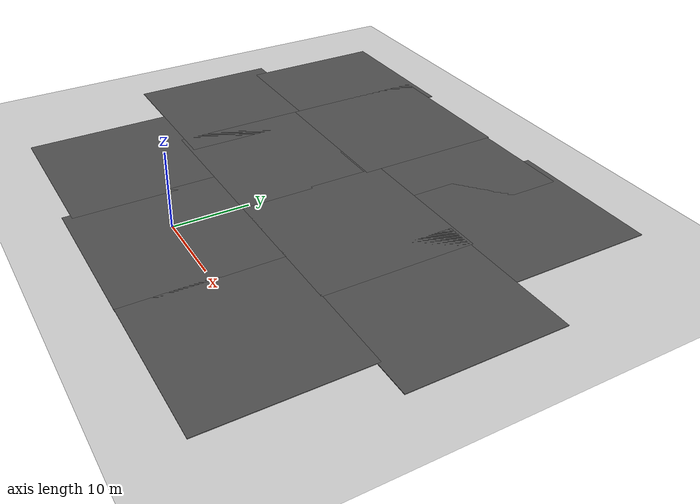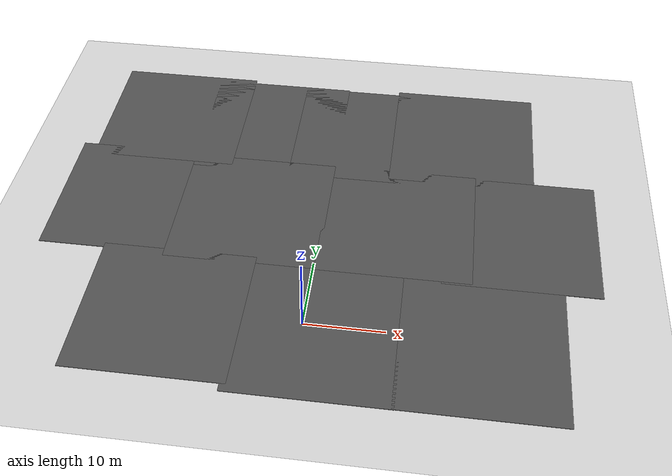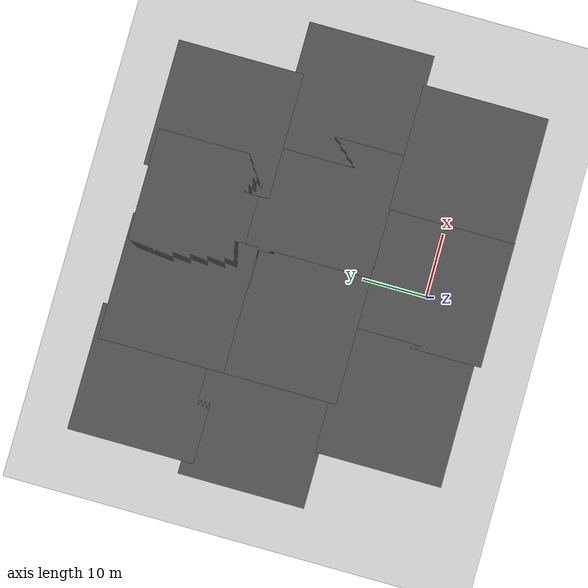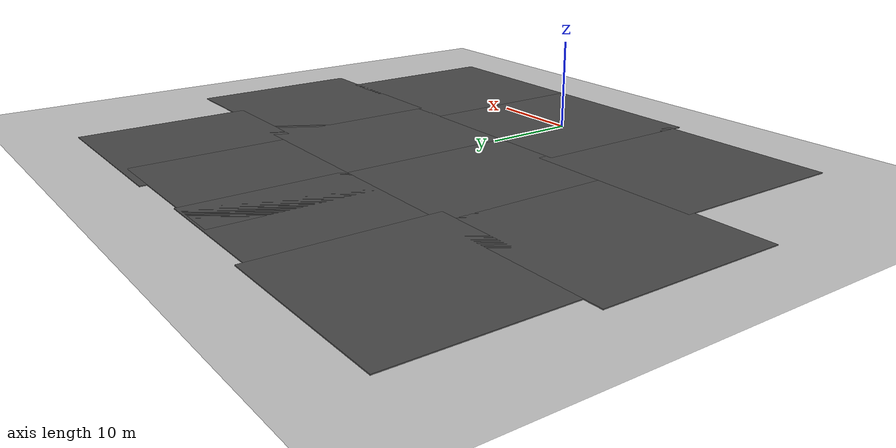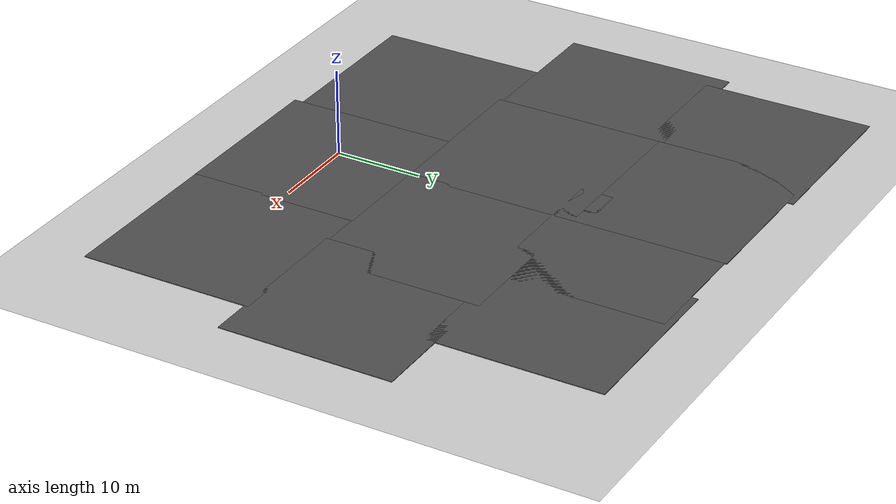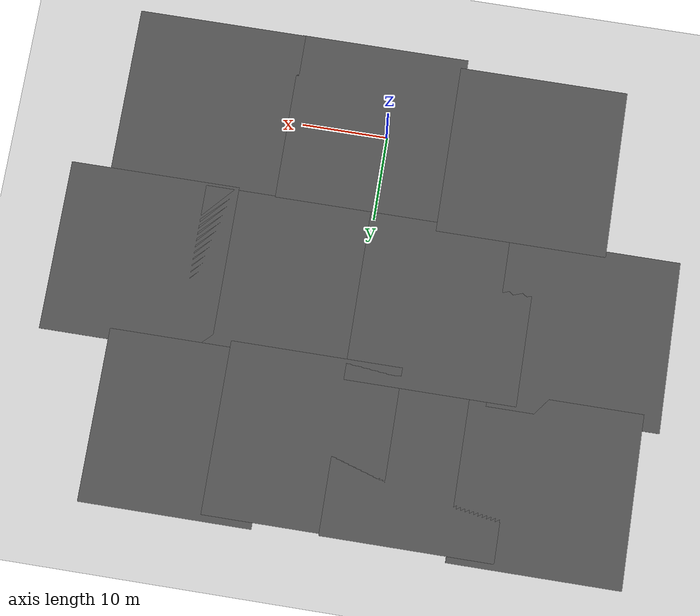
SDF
<sdf version="1.7">
 <world name="default">
  <light name="sun" type="directional">
   <pose>0 0 10 0 -0 0</pose>
   <diffuse>0.8 0.8 0.8 1</diffuse>
   <specular>0.2 0.2 0.2 1</specular>
   <attenuation>
    <range>1000</range>
    <constant>0.9</constant>
    <linear>0.01</linear>
    <quadratic>0.001</quadratic>
   </attenuation>
   <direction>-0.5 0.1 -0.9</direction>
   <spot><inner_angle>0</inner_angle><outer_angle>0</outer_angle><falloff>0</falloff></spot>
  </light>
  <model name="ground_plane">
   <static>1</static>
   <link name="link">
    <collision name="collision">
     <geometry><plane><normal>0 0 1</normal><size>100 100</size></plane></geometry>
     <surface>
      <contact><collide_bitmask>65535</collide_bitmask></contact>
      <friction><ode><mu>100</mu><mu2>50</mu2></ode></friction>
     </surface>
    </collision>
    <visual name="visual">
     <cast_shadows>0</cast_shadows>
     <geometry><plane><normal>0 0 1</normal><size>100 100</size></plane></geometry>
     <material>
      <script><uri>file://media/materials/scripts/gazebo.material</uri><name>Gazebo/Grey</name></script>
     </material>
    </visual>
   </link>
  </model>
  <gravity>0 0 -9.8</gravity>
  <magnetic_field>6e-06 2.3e-05 -4.2e-05</magnetic_field>
  <atmosphere type="adiabatic"/>
  <physics type="ode">
   <max_step_size>0.001</max_step_size>
   <real_time_factor>1</real_time_factor>
   <real_time_update_rate>1000</real_time_update_rate>
  </physics>
  <scene><ambient>0.4 0.4 0.4 1</ambient><background>0.7 0.7 0.7 1</background><shadows>1</shadows></scene>
  <spherical_coordinates>
   <surface_model>EARTH_WGS84</surface_model>
   <latitude_deg>0</latitude_deg>
   <longitude_deg>0</longitude_deg>
   <elevation>0</elevation>
   <heading_deg>0</heading_deg>
  </spherical_coordinates>
  <model name="asphalt_plane">
   <static>1</static>
   <link name="link">
    <collision name="collision"><geometry><box><size>20 20 0.1</size></box></geometry></collision>
    <visual name="visual">
     <cast_shadows>0</cast_shadows>
     <geometry><box><size>20 20 0.1</size></box></geometry>
     <material>
      <script>
       <uri>model://asphalt_plane/materials/scripts</uri>
       <uri>model://asphalt_plane/materials/textures</uri>
       <name>vrc/asphalt</name>
      </script>
     </material>
    </visual>
   </link>
   <pose>1.84203 -0.926278 0 0 -0 0</pose>
  </model>
  <model name="asphalt_plane_clone">
   <static>1</static>
   <link name="link">
    <collision name="collision"><geometry><box><size>20 20 0.1</size></box></geometry></collision>
    <visual name="visual">
     <cast_shadows>0</cast_shadows>
     <geometry><box><size>20 20 0.1</size></box></geometry>
     <material>
      <script>
       <uri>model://asphalt_plane/materials/scripts</uri>
       <uri>model://asphalt_plane/materials/textures</uri>
       <name>vrc/asphalt</name>
      </script>
     </material>
    </visual>
   </link>
   <pose>21.5033 -0.890637 0 0 -0 0</pose>
  </model>
  <model name="asphalt_plane_clone_0">
   <static>1</static>
   <link name="link">
    <collision name="collision"><geometry><box><size>20 20 0.1</size></box></geometry></collision>
    <visual name="visual">
     <cast_shadows>0</cast_shadows>
     <geometry><box><size>20 20 0.1</size></box></geometry>
     <material>
      <script>
       <uri>model://asphalt_plane/materials/scripts</uri>
       <uri>model://asphalt_plane/materials/textures</uri>
       <name>vrc/asphalt</name>
      </script>
     </material>
    </visual>
   </link>
   <pose>-17.3999 0.120301 0 0 -0 0</pose>
  </model>
  <model name="asphalt_plane_clone_1">
   <static>1</static>
   <link name="link">
    <collision name="collision"><geometry><box><size>20 20 0.1</size></box></geometry></collision>
    <visual name="visual">
     <cast_shadows>0</cast_shadows>
     <geometry><box><size>20 20 0.1</size></box></geometry>
     <material>
      <script>
       <uri>model://asphalt_plane/materials/scripts</uri>
       <uri>model://asphalt_plane/materials/textures</uri>
       <name>vrc/asphalt</name>
      </script>
     </material>
    </visual>
   </link>
   <pose>10.0543 18.963 0 0 -0 0</pose>
  </model>
  <model name="asphalt_plane_clone_2">
   <static>1</static>
   <link name="link">
    <collision name="collision"><geometry><box><size>20 20 0.1</size></box></geometry></collision>
    <visual name="visual">
     <cast_shadows>0</cast_shadows>
     <geometry><box><size>20 20 0.1</size></box></geometry>
     <material>
      <script>
       <uri>model://asphalt_plane/materials/scripts</uri>
       <uri>model://asphalt_plane/materials/textures</uri>
       <name>vrc/asphalt</name>
      </script>
     </material>
    </visual>
   </link>
   <pose>26.1787 18.6476 0 0 -0 0</pose>
  </model>
  <model name="asphalt_plane_clone_0_clone">
   <static>1</static>
   <link name="link">
    <collision name="collision"><geometry><box><size>20 20 0.1</size></box></geometry></collision>
    <visual name="visual">
     <cast_shadows>0</cast_shadows>
     <geometry><box><size>20 20 0.1</size></box></geometry>
     <material>
      <script>
       <uri>model://asphalt_plane/materials/scripts</uri>
       <uri>model://asphalt_plane/materials/textures</uri>
       <name>vrc/asphalt</name>
      </script>
     </material>
    </visual>
   </link>
   <pose>-9.53229 18.9532 0 0 -0 0</pose>
  </model>
  <model name="asphalt_plane_clone_0_clone_0">
   <static>1</static>
   <link name="link">
    <collision name="collision"><geometry><box><size>20 20 0.1</size></box></geometry></collision>
    <visual name="visual">
     <cast_shadows>0</cast_shadows>
     <geometry><box><size>20 20 0.1</size></box></geometry>
     <material>
      <script>
       <uri>model://asphalt_plane/materials/scripts</uri>
       <uri>model://asphalt_plane/materials/textures</uri>
       <name>vrc/asphalt</name>
      </script>
     </material>
    </visual>
   </link>
   <pose>-26.0996 19.424 0 0 -0 0</pose>
  </model>
  <model name="asphalt_plane_clone_0_clone_1">
   <static>1</static>
   <link name="link">
    <collision name="collision"><geometry><box><size>20 20 0.1</size></box></geometry></collision>
    <visual name="visual">
     <cast_shadows>0</cast_shadows>
     <geometry><box><size>20 20 0.1</size></box></geometry>
     <material>
      <script>
       <uri>model://asphalt_plane/materials/scripts</uri>
       <uri>model://asphalt_plane/materials/textures</uri>
       <name>vrc/asphalt</name>
      </script>
     </material>
    </visual>
   </link>
   <pose>-24.1074 37.5157 0 0 -0 0</pose>
  </model>
  <model name="asphalt_plane_clone_0_clone_2">
   <static>1</static>
   <link name="link">
    <collision name="collision"><geometry><box><size>20 20 0.1</size></box></geometry></collision>
    <visual name="visual">
     <cast_shadows>0</cast_shadows>
     <geometry><box><size>20 20 0.1</size></box></geometry>
     <material>
      <script>
       <uri>model://asphalt_plane/materials/scripts</uri>
       <uri>model://asphalt_plane/materials/textures</uri>
       <name>vrc/asphalt</name>
      </script>
     </material>
    </visual>
   </link>
   <pose>-9.53229 36.8103 0 0 -0 0</pose>
  </model>
  <model name="asphalt_plane_clone_0_clone_3">
   <static>1</static>
   <link name="link">
    <collision name="collision"><geometry><box><size>20 20 0.1</size></box></geometry></collision>
    <visual name="visual">
     <cast_shadows>0</cast_shadows>
     <geometry><box><size>20 20 0.1</size></box></geometry>
     <material>
      <script>
       <uri>model://asphalt_plane/materials/scripts</uri>
       <uri>model://asphalt_plane/materials/textures</uri>
       <name>vrc/asphalt</name>
      </script>
     </material>
    </visual>
   </link>
   <pose>4 36.5756 0 0 -0 0</pose>
  </model>
  <model name="asphalt_plane_clone_0_clone_4">
   <static>1</static>
   <link name="link">
    <collision name="collision"><geometry><box><size>20 20 0.1</size></box></geometry></collision>
    <visual name="visual">
     <cast_shadows>0</cast_shadows>
     <geometry><box><size>20 20 0.1</size></box></geometry>
     <material>
      <script>
       <uri>model://asphalt_plane/materials/scripts</uri>
       <uri>model://asphalt_plane/materials/textures</uri>
       <name>vrc/asphalt</name>
      </script>
     </material>
    </visual>
   </link>
   <pose>18.0716 37.3459 0 0 -0 0</pose>
  </model>
 </world>
</sdf>
